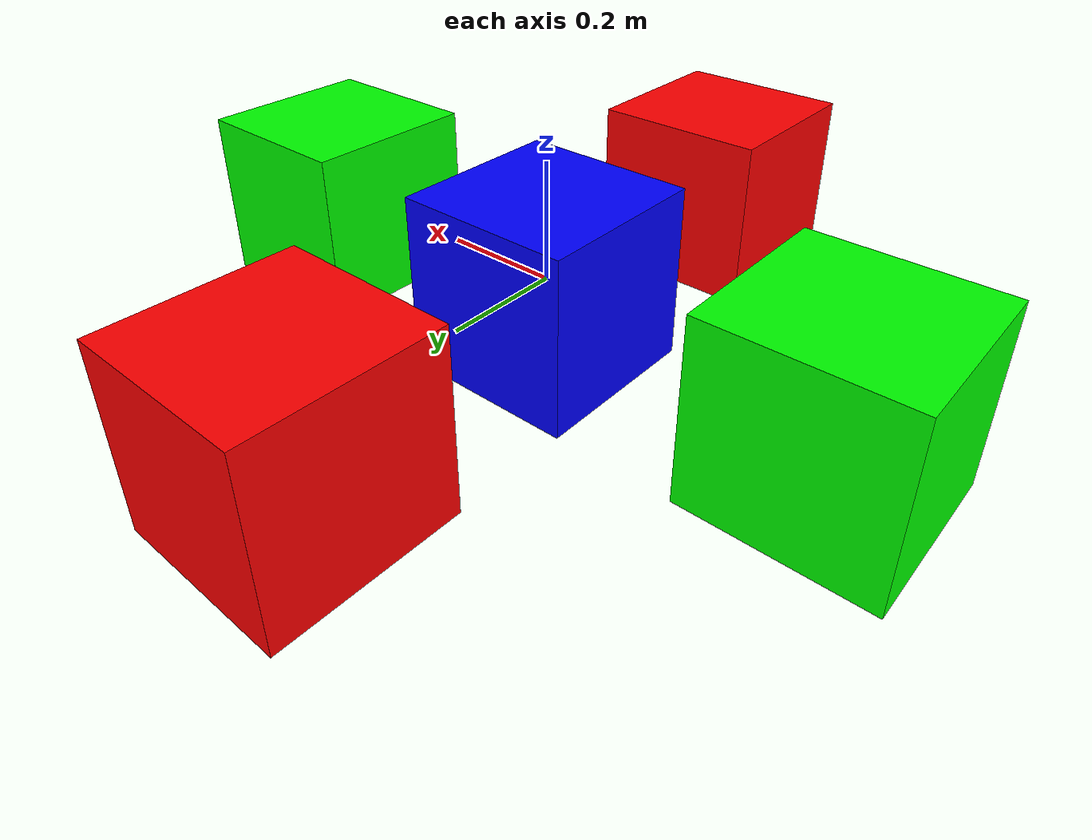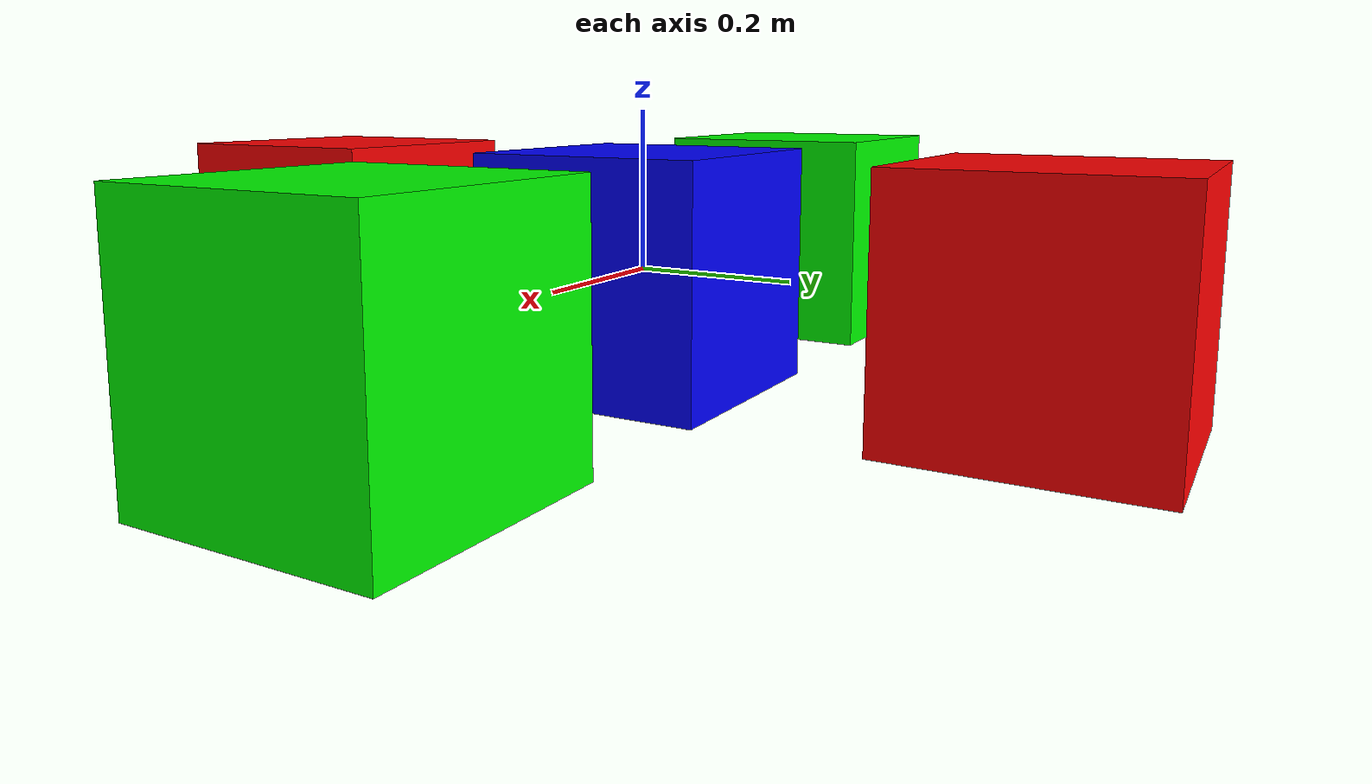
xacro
<?xml version="1.0"?>
<robot xmlns:xacro="http://www.ros.org/wiki/xacro" name="box">
    <xacro:macro name="box_1" params="*origin parent *color material suffix">
        <joint name="${suffix}_joint" type="fixed">
            <parent link="${parent}"/>
            <child link="${suffix}_link"/>
            <xacro:insert_block name="origin"/>
        </joint>
        <link name="${suffix}_link">
            <visual>
                <geometry>
                    <box size="0.3 0.3 0.3"/>
                </geometry>
                <material name="${material}">
                    <xacro:insert_block name="color"/>
                </material>
            </visual>
        </link>
    </xacro:macro>
    <link name="base_link">
    </link>
    <xacro:box_1 parent="base_link" material="blue" suffix="box1">
        <origin xyz="0.0 0.0 0.0" rpy="0.0 0.0 0.0"/>
        <color rgba="0.0 0.0 1.0 1.0"/>
    </xacro:box_1>

    <xacro:box_1 parent="base_link" material="green" suffix="box2">
        <origin xyz="0.5 0.0 0.0" rpy="0.0 0.0 0.0"/>
        <color rgba="0.0 1.0 0.0 1.0"/>
    </xacro:box_1>

    <xacro:box_1 parent="base_link" material="green" suffix="box3">
        <origin xyz="-0.5 0.0 0.0" rpy="0.0 0.0 0.0"/>
        <color rgba="0.0 1.0 0.0 1.0"/>
    </xacro:box_1>

    <xacro:box_1 parent="base_link" material="red" suffix="box4">
        <origin xyz="0.0 0.5 0.0" rpy="0.0 0.0 0.0"/>
        <color rgba="1.0 0.0 0.0 1.0"/>
    </xacro:box_1>

    <xacro:box_1 parent="base_link" material="red" suffix="box5">
        <origin xyz="0.0 -0.5 0.0" rpy="0.0 0.0 0.0"/>
        <color rgba="1.0 0.0 0.0 1.0"/>
    </xacro:box_1>
</robot>
